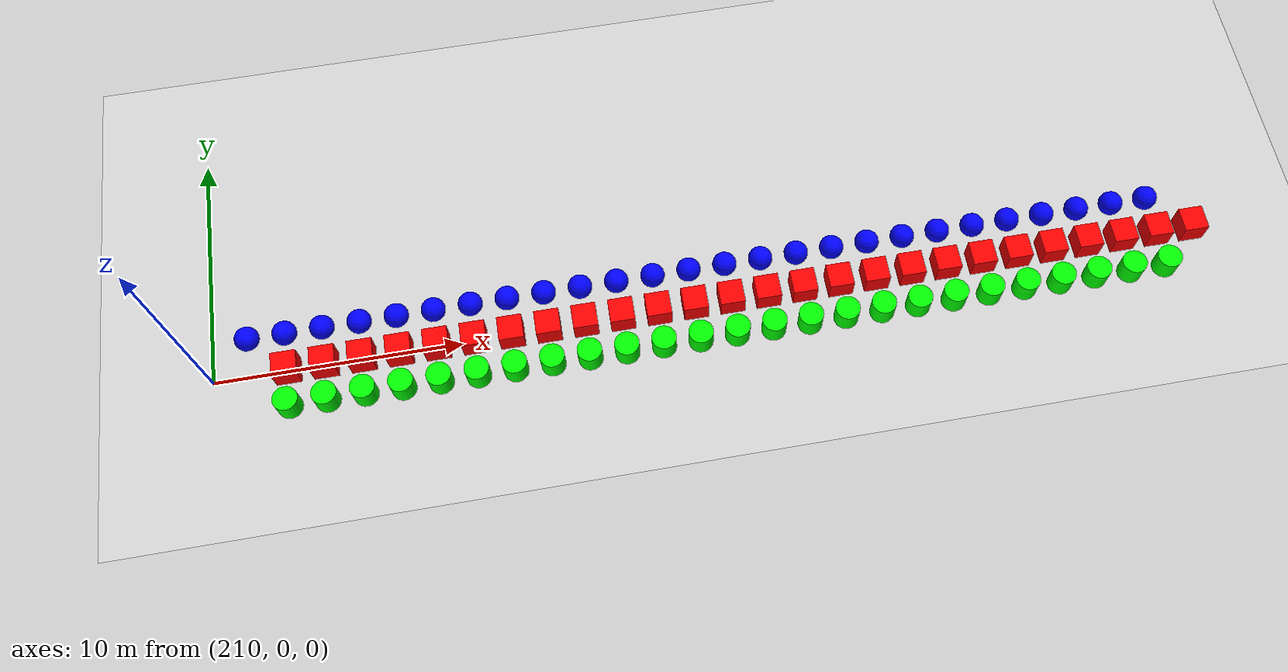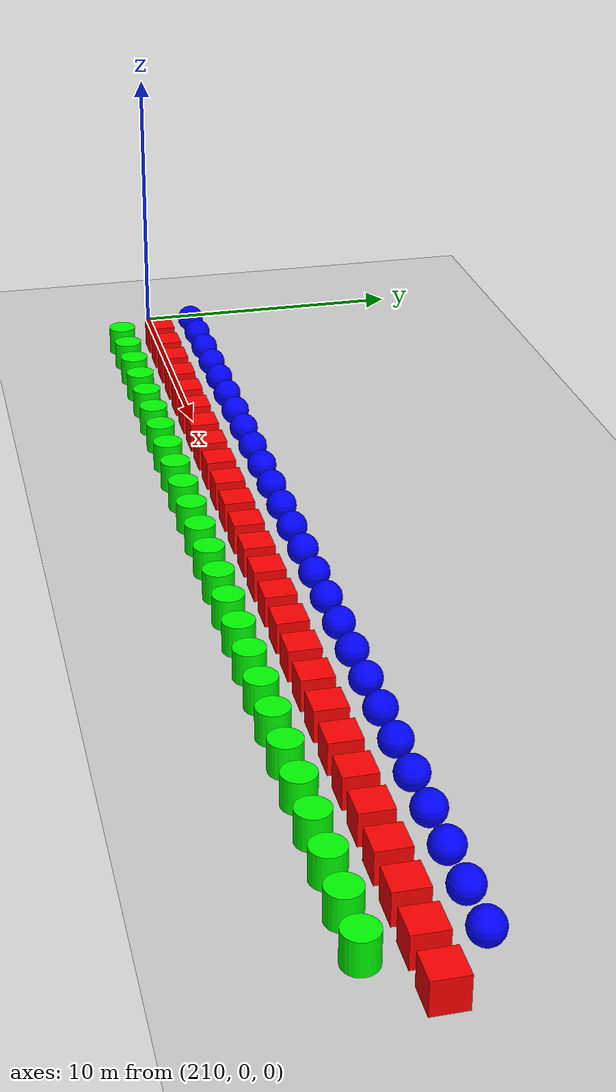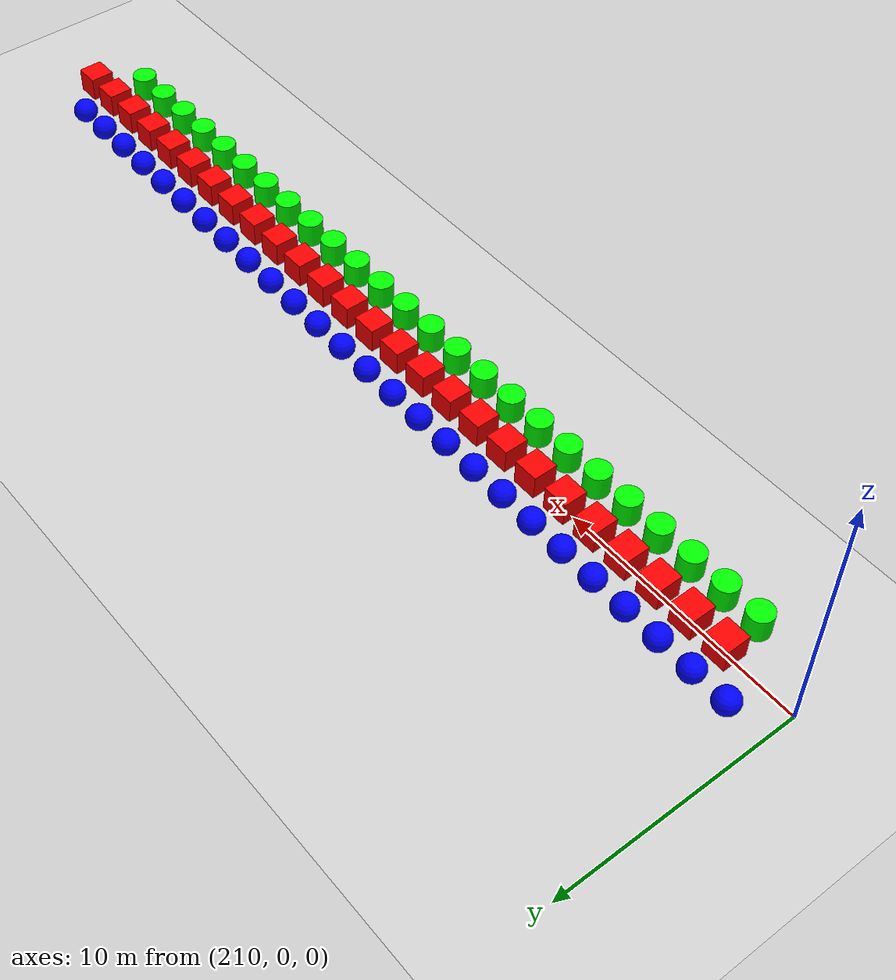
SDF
<sdf version="1.6">
 <world name="shapes">
  <model name="ground_plane">
   <static>true</static>
   <link name="link">
    <collision name="collision">
     <geometry><plane><normal>0 0 1</normal><size>100 100</size></plane></geometry>
    </collision>
    <visual name="visual">
     <geometry><plane><normal>0 0 1</normal><size>100 100</size></plane></geometry>
     <material>
      <ambient>0.8 0.8 0.8 1</ambient>
      <diffuse>0.8 0.8 0.8 1</diffuse>
      <specular>0.8 0.8 0.8 1</specular>
     </material>
    </visual>
   </link>
  </model>
  <model name="sphere_641">
   <static>false</static>
   <pose>211.5 1.5 0.5 0 0 0</pose>
   <link name="sphere_link">
    <inertial>
     <inertia><ixx>3</ixx><ixy>0</ixy><ixz>0</ixz><iyy>3</iyy><iyz>0</iyz><izz>3</izz></inertia>
     <mass>3.0</mass>
    </inertial>
    <collision name="sphere_collision"><geometry><sphere><radius>0.5</radius></sphere></geometry></collision>
    <visual name="sphere_visual">
     <geometry><sphere><radius>0.5</radius></sphere></geometry>
     <material><ambient>0 0 1 1</ambient><diffuse>0 0 1 1</diffuse><specular>0 0 1 1</specular></material>
    </visual>
   </link>
  </model>
  <model name="box_642">
   <static>false</static>
   <pose>213.0 0 0.5 0 0 0</pose>
   <link name="box_link">
    <inertial>
     <inertia><ixx>1</ixx><ixy>0</ixy><ixz>0</ixz><iyy>1</iyy><iyz>0</iyz><izz>1</izz></inertia>
     <mass>1.0</mass>
    </inertial>
    <collision name="box_collision"><geometry><box><size>1 1 1</size></box></geometry></collision>
    <visual name="box_visual">
     <geometry><box><size>1 1 1</size></box></geometry>
     <material><ambient>1 0 0 1</ambient><diffuse>1 0 0 1</diffuse><specular>1 0 0 1</specular></material>
    </visual>
   </link>
  </model>
  <model name="cylinder_642">
   <static>false</static>
   <pose>213.0 -1.5 0.5 0 0 0</pose>
   <link name="cylinder_link">
    <inertial>
     <inertia><ixx>2</ixx><ixy>0</ixy><ixz>0</ixz><iyy>2</iyy><iyz>0</iyz><izz>2</izz></inertia>
     <mass>2.0</mass>
    </inertial>
    <collision name="cylinder_collision">
     <geometry><cylinder><radius>0.5</radius><length>1.0</length></cylinder></geometry>
    </collision>
    <visual name="cylinder_visual">
     <geometry><cylinder><radius>0.5</radius><length>1.0</length></cylinder></geometry>
     <material><ambient>0 1 0 1</ambient><diffuse>0 1 0 1</diffuse><specular>0 1 0 1</specular></material>
    </visual>
   </link>
  </model>
  <model name="sphere_642">
   <static>false</static>
   <pose>213.0 1.5 0.5 0 0 0</pose>
   <link name="sphere_link">
    <inertial>
     <inertia><ixx>3</ixx><ixy>0</ixy><ixz>0</ixz><iyy>3</iyy><iyz>0</iyz><izz>3</izz></inertia>
     <mass>3.0</mass>
    </inertial>
    <collision name="sphere_collision"><geometry><sphere><radius>0.5</radius></sphere></geometry></collision>
    <visual name="sphere_visual">
     <geometry><sphere><radius>0.5</radius></sphere></geometry>
     <material><ambient>0 0 1 1</ambient><diffuse>0 0 1 1</diffuse><specular>0 0 1 1</specular></material>
    </visual>
   </link>
  </model>
  <model name="box_643">
   <static>false</static>
   <pose>214.5 0 0.5 0 0 0</pose>
   <link name="box_link">
    <inertial>
     <inertia><ixx>1</ixx><ixy>0</ixy><ixz>0</ixz><iyy>1</iyy><iyz>0</iyz><izz>1</izz></inertia>
     <mass>1.0</mass>
    </inertial>
    <collision name="box_collision"><geometry><box><size>1 1 1</size></box></geometry></collision>
    <visual name="box_visual">
     <geometry><box><size>1 1 1</size></box></geometry>
     <material><ambient>1 0 0 1</ambient><diffuse>1 0 0 1</diffuse><specular>1 0 0 1</specular></material>
    </visual>
   </link>
  </model>
  <model name="cylinder_643">
   <static>false</static>
   <pose>214.5 -1.5 0.5 0 0 0</pose>
   <link name="cylinder_link">
    <inertial>
     <inertia><ixx>2</ixx><ixy>0</ixy><ixz>0</ixz><iyy>2</iyy><iyz>0</iyz><izz>2</izz></inertia>
     <mass>2.0</mass>
    </inertial>
    <collision name="cylinder_collision">
     <geometry><cylinder><radius>0.5</radius><length>1.0</length></cylinder></geometry>
    </collision>
    <visual name="cylinder_visual">
     <geometry><cylinder><radius>0.5</radius><length>1.0</length></cylinder></geometry>
     <material><ambient>0 1 0 1</ambient><diffuse>0 1 0 1</diffuse><specular>0 1 0 1</specular></material>
    </visual>
   </link>
  </model>
  <model name="sphere_643">
   <static>false</static>
   <pose>214.5 1.5 0.5 0 0 0</pose>
   <link name="sphere_link">
    <inertial>
     <inertia><ixx>3</ixx><ixy>0</ixy><ixz>0</ixz><iyy>3</iyy><iyz>0</iyz><izz>3</izz></inertia>
     <mass>3.0</mass>
    </inertial>
    <collision name="sphere_collision"><geometry><sphere><radius>0.5</radius></sphere></geometry></collision>
    <visual name="sphere_visual">
     <geometry><sphere><radius>0.5</radius></sphere></geometry>
     <material><ambient>0 0 1 1</ambient><diffuse>0 0 1 1</diffuse><specular>0 0 1 1</specular></material>
    </visual>
   </link>
  </model>
  <model name="box_644">
   <static>false</static>
   <pose>216.0 0 0.5 0 0 0</pose>
   <link name="box_link">
    <inertial>
     <inertia><ixx>1</ixx><ixy>0</ixy><ixz>0</ixz><iyy>1</iyy><iyz>0</iyz><izz>1</izz></inertia>
     <mass>1.0</mass>
    </inertial>
    <collision name="box_collision"><geometry><box><size>1 1 1</size></box></geometry></collision>
    <visual name="box_visual">
     <geometry><box><size>1 1 1</size></box></geometry>
     <material><ambient>1 0 0 1</ambient><diffuse>1 0 0 1</diffuse><specular>1 0 0 1</specular></material>
    </visual>
   </link>
  </model>
  <model name="cylinder_644">
   <static>false</static>
   <pose>216.0 -1.5 0.5 0 0 0</pose>
   <link name="cylinder_link">
    <inertial>
     <inertia><ixx>2</ixx><ixy>0</ixy><ixz>0</ixz><iyy>2</iyy><iyz>0</iyz><izz>2</izz></inertia>
     <mass>2.0</mass>
    </inertial>
    <collision name="cylinder_collision">
     <geometry><cylinder><radius>0.5</radius><length>1.0</length></cylinder></geometry>
    </collision>
    <visual name="cylinder_visual">
     <geometry><cylinder><radius>0.5</radius><length>1.0</length></cylinder></geometry>
     <material><ambient>0 1 0 1</ambient><diffuse>0 1 0 1</diffuse><specular>0 1 0 1</specular></material>
    </visual>
   </link>
  </model>
  <model name="sphere_644">
   <static>false</static>
   <pose>216.0 1.5 0.5 0 0 0</pose>
   <link name="sphere_link">
    <inertial>
     <inertia><ixx>3</ixx><ixy>0</ixy><ixz>0</ixz><iyy>3</iyy><iyz>0</iyz><izz>3</izz></inertia>
     <mass>3.0</mass>
    </inertial>
    <collision name="sphere_collision"><geometry><sphere><radius>0.5</radius></sphere></geometry></collision>
    <visual name="sphere_visual">
     <geometry><sphere><radius>0.5</radius></sphere></geometry>
     <material><ambient>0 0 1 1</ambient><diffuse>0 0 1 1</diffuse><specular>0 0 1 1</specular></material>
    </visual>
   </link>
  </model>
  <model name="box_645">
   <static>false</static>
   <pose>217.5 0 0.5 0 0 0</pose>
   <link name="box_link">
    <inertial>
     <inertia><ixx>1</ixx><ixy>0</ixy><ixz>0</ixz><iyy>1</iyy><iyz>0</iyz><izz>1</izz></inertia>
     <mass>1.0</mass>
    </inertial>
    <collision name="box_collision"><geometry><box><size>1 1 1</size></box></geometry></collision>
    <visual name="box_visual">
     <geometry><box><size>1 1 1</size></box></geometry>
     <material><ambient>1 0 0 1</ambient><diffuse>1 0 0 1</diffuse><specular>1 0 0 1</specular></material>
    </visual>
   </link>
  </model>
  <model name="cylinder_645">
   <static>false</static>
   <pose>217.5 -1.5 0.5 0 0 0</pose>
   <link name="cylinder_link">
    <inertial>
     <inertia><ixx>2</ixx><ixy>0</ixy><ixz>0</ixz><iyy>2</iyy><iyz>0</iyz><izz>2</izz></inertia>
     <mass>2.0</mass>
    </inertial>
    <collision name="cylinder_collision">
     <geometry><cylinder><radius>0.5</radius><length>1.0</length></cylinder></geometry>
    </collision>
    <visual name="cylinder_visual">
     <geometry><cylinder><radius>0.5</radius><length>1.0</length></cylinder></geometry>
     <material><ambient>0 1 0 1</ambient><diffuse>0 1 0 1</diffuse><specular>0 1 0 1</specular></material>
    </visual>
   </link>
  </model>
  <model name="sphere_645">
   <static>false</static>
   <pose>217.5 1.5 0.5 0 0 0</pose>
   <link name="sphere_link">
    <inertial>
     <inertia><ixx>3</ixx><ixy>0</ixy><ixz>0</ixz><iyy>3</iyy><iyz>0</iyz><izz>3</izz></inertia>
     <mass>3.0</mass>
    </inertial>
    <collision name="sphere_collision"><geometry><sphere><radius>0.5</radius></sphere></geometry></collision>
    <visual name="sphere_visual">
     <geometry><sphere><radius>0.5</radius></sphere></geometry>
     <material><ambient>0 0 1 1</ambient><diffuse>0 0 1 1</diffuse><specular>0 0 1 1</specular></material>
    </visual>
   </link>
  </model>
  <model name="box_646">
   <static>false</static>
   <pose>219.0 0 0.5 0 0 0</pose>
   <link name="box_link">
    <inertial>
     <inertia><ixx>1</ixx><ixy>0</ixy><ixz>0</ixz><iyy>1</iyy><iyz>0</iyz><izz>1</izz></inertia>
     <mass>1.0</mass>
    </inertial>
    <collision name="box_collision"><geometry><box><size>1 1 1</size></box></geometry></collision>
    <visual name="box_visual">
     <geometry><box><size>1 1 1</size></box></geometry>
     <material><ambient>1 0 0 1</ambient><diffuse>1 0 0 1</diffuse><specular>1 0 0 1</specular></material>
    </visual>
   </link>
  </model>
  <model name="cylinder_646">
   <static>false</static>
   <pose>219.0 -1.5 0.5 0 0 0</pose>
   <link name="cylinder_link">
    <inertial>
     <inertia><ixx>2</ixx><ixy>0</ixy><ixz>0</ixz><iyy>2</iyy><iyz>0</iyz><izz>2</izz></inertia>
     <mass>2.0</mass>
    </inertial>
    <collision name="cylinder_collision">
     <geometry><cylinder><radius>0.5</radius><length>1.0</length></cylinder></geometry>
    </collision>
    <visual name="cylinder_visual">
     <geometry><cylinder><radius>0.5</radius><length>1.0</length></cylinder></geometry>
     <material><ambient>0 1 0 1</ambient><diffuse>0 1 0 1</diffuse><specular>0 1 0 1</specular></material>
    </visual>
   </link>
  </model>
  <model name="sphere_646">
   <static>false</static>
   <pose>219.0 1.5 0.5 0 0 0</pose>
   <link name="sphere_link">
    <inertial>
     <inertia><ixx>3</ixx><ixy>0</ixy><ixz>0</ixz><iyy>3</iyy><iyz>0</iyz><izz>3</izz></inertia>
     <mass>3.0</mass>
    </inertial>
    <collision name="sphere_collision"><geometry><sphere><radius>0.5</radius></sphere></geometry></collision>
    <visual name="sphere_visual">
     <geometry><sphere><radius>0.5</radius></sphere></geometry>
     <material><ambient>0 0 1 1</ambient><diffuse>0 0 1 1</diffuse><specular>0 0 1 1</specular></material>
    </visual>
   </link>
  </model>
  <model name="box_647">
   <static>false</static>
   <pose>220.5 0 0.5 0 0 0</pose>
   <link name="box_link">
    <inertial>
     <inertia><ixx>1</ixx><ixy>0</ixy><ixz>0</ixz><iyy>1</iyy><iyz>0</iyz><izz>1</izz></inertia>
     <mass>1.0</mass>
    </inertial>
    <collision name="box_collision"><geometry><box><size>1 1 1</size></box></geometry></collision>
    <visual name="box_visual">
     <geometry><box><size>1 1 1</size></box></geometry>
     <material><ambient>1 0 0 1</ambient><diffuse>1 0 0 1</diffuse><specular>1 0 0 1</specular></material>
    </visual>
   </link>
  </model>
  <model name="cylinder_647">
   <static>false</static>
   <pose>220.5 -1.5 0.5 0 0 0</pose>
   <link name="cylinder_link">
    <inertial>
     <inertia><ixx>2</ixx><ixy>0</ixy><ixz>0</ixz><iyy>2</iyy><iyz>0</iyz><izz>2</izz></inertia>
     <mass>2.0</mass>
    </inertial>
    <collision name="cylinder_collision">
     <geometry><cylinder><radius>0.5</radius><length>1.0</length></cylinder></geometry>
    </collision>
    <visual name="cylinder_visual">
     <geometry><cylinder><radius>0.5</radius><length>1.0</length></cylinder></geometry>
     <material><ambient>0 1 0 1</ambient><diffuse>0 1 0 1</diffuse><specular>0 1 0 1</specular></material>
    </visual>
   </link>
  </model>
  <model name="sphere_647">
   <static>false</static>
   <pose>220.5 1.5 0.5 0 0 0</pose>
   <link name="sphere_link">
    <inertial>
     <inertia><ixx>3</ixx><ixy>0</ixy><ixz>0</ixz><iyy>3</iyy><iyz>0</iyz><izz>3</izz></inertia>
     <mass>3.0</mass>
    </inertial>
    <collision name="sphere_collision"><geometry><sphere><radius>0.5</radius></sphere></geometry></collision>
    <visual name="sphere_visual">
     <geometry><sphere><radius>0.5</radius></sphere></geometry>
     <material><ambient>0 0 1 1</ambient><diffuse>0 0 1 1</diffuse><specular>0 0 1 1</specular></material>
    </visual>
   </link>
  </model>
  <model name="box_648">
   <static>false</static>
   <pose>222.0 0 0.5 0 0 0</pose>
   <link name="box_link">
    <inertial>
     <inertia><ixx>1</ixx><ixy>0</ixy><ixz>0</ixz><iyy>1</iyy><iyz>0</iyz><izz>1</izz></inertia>
     <mass>1.0</mass>
    </inertial>
    <collision name="box_collision"><geometry><box><size>1 1 1</size></box></geometry></collision>
    <visual name="box_visual">
     <geometry><box><size>1 1 1</size></box></geometry>
     <material><ambient>1 0 0 1</ambient><diffuse>1 0 0 1</diffuse><specular>1 0 0 1</specular></material>
    </visual>
   </link>
  </model>
  <model name="cylinder_648">
   <static>false</static>
   <pose>222.0 -1.5 0.5 0 0 0</pose>
   <link name="cylinder_link">
    <inertial>
     <inertia><ixx>2</ixx><ixy>0</ixy><ixz>0</ixz><iyy>2</iyy><iyz>0</iyz><izz>2</izz></inertia>
     <mass>2.0</mass>
    </inertial>
    <collision name="cylinder_collision">
     <geometry><cylinder><radius>0.5</radius><length>1.0</length></cylinder></geometry>
    </collision>
    <visual name="cylinder_visual">
     <geometry><cylinder><radius>0.5</radius><length>1.0</length></cylinder></geometry>
     <material><ambient>0 1 0 1</ambient><diffuse>0 1 0 1</diffuse><specular>0 1 0 1</specular></material>
    </visual>
   </link>
  </model>
  <model name="sphere_648">
   <static>false</static>
   <pose>222.0 1.5 0.5 0 0 0</pose>
   <link name="sphere_link">
    <inertial>
     <inertia><ixx>3</ixx><ixy>0</ixy><ixz>0</ixz><iyy>3</iyy><iyz>0</iyz><izz>3</izz></inertia>
     <mass>3.0</mass>
    </inertial>
    <collision name="sphere_collision"><geometry><sphere><radius>0.5</radius></sphere></geometry></collision>
    <visual name="sphere_visual">
     <geometry><sphere><radius>0.5</radius></sphere></geometry>
     <material><ambient>0 0 1 1</ambient><diffuse>0 0 1 1</diffuse><specular>0 0 1 1</specular></material>
    </visual>
   </link>
  </model>
  <model name="box_649">
   <static>false</static>
   <pose>223.5 0 0.5 0 0 0</pose>
   <link name="box_link">
    <inertial>
     <inertia><ixx>1</ixx><ixy>0</ixy><ixz>0</ixz><iyy>1</iyy><iyz>0</iyz><izz>1</izz></inertia>
     <mass>1.0</mass>
    </inertial>
    <collision name="box_collision"><geometry><box><size>1 1 1</size></box></geometry></collision>
    <visual name="box_visual">
     <geometry><box><size>1 1 1</size></box></geometry>
     <material><ambient>1 0 0 1</ambient><diffuse>1 0 0 1</diffuse><specular>1 0 0 1</specular></material>
    </visual>
   </link>
  </model>
  <model name="cylinder_649">
   <static>false</static>
   <pose>223.5 -1.5 0.5 0 0 0</pose>
   <link name="cylinder_link">
    <inertial>
     <inertia><ixx>2</ixx><ixy>0</ixy><ixz>0</ixz><iyy>2</iyy><iyz>0</iyz><izz>2</izz></inertia>
     <mass>2.0</mass>
    </inertial>
    <collision name="cylinder_collision">
     <geometry><cylinder><radius>0.5</radius><length>1.0</length></cylinder></geometry>
    </collision>
    <visual name="cylinder_visual">
     <geometry><cylinder><radius>0.5</radius><length>1.0</length></cylinder></geometry>
     <material><ambient>0 1 0 1</ambient><diffuse>0 1 0 1</diffuse><specular>0 1 0 1</specular></material>
    </visual>
   </link>
  </model>
  <model name="sphere_649">
   <static>false</static>
   <pose>223.5 1.5 0.5 0 0 0</pose>
   <link name="sphere_link">
    <inertial>
     <inertia><ixx>3</ixx><ixy>0</ixy><ixz>0</ixz><iyy>3</iyy><iyz>0</iyz><izz>3</izz></inertia>
     <mass>3.0</mass>
    </inertial>
    <collision name="sphere_collision"><geometry><sphere><radius>0.5</radius></sphere></geometry></collision>
    <visual name="sphere_visual">
     <geometry><sphere><radius>0.5</radius></sphere></geometry>
     <material><ambient>0 0 1 1</ambient><diffuse>0 0 1 1</diffuse><specular>0 0 1 1</specular></material>
    </visual>
   </link>
  </model>
  <model name="box_650">
   <static>false</static>
   <pose>225.0 0 0.5 0 0 0</pose>
   <link name="box_link">
    <inertial>
     <inertia><ixx>1</ixx><ixy>0</ixy><ixz>0</ixz><iyy>1</iyy><iyz>0</iyz><izz>1</izz></inertia>
     <mass>1.0</mass>
    </inertial>
    <collision name="box_collision"><geometry><box><size>1 1 1</size></box></geometry></collision>
    <visual name="box_visual">
     <geometry><box><size>1 1 1</size></box></geometry>
     <material><ambient>1 0 0 1</ambient><diffuse>1 0 0 1</diffuse><specular>1 0 0 1</specular></material>
    </visual>
   </link>
  </model>
  <model name="cylinder_650">
   <static>false</static>
   <pose>225.0 -1.5 0.5 0 0 0</pose>
   <link name="cylinder_link">
    <inertial>
     <inertia><ixx>2</ixx><ixy>0</ixy><ixz>0</ixz><iyy>2</iyy><iyz>0</iyz><izz>2</izz></inertia>
     <mass>2.0</mass>
    </inertial>
    <collision name="cylinder_collision">
     <geometry><cylinder><radius>0.5</radius><length>1.0</length></cylinder></geometry>
    </collision>
    <visual name="cylinder_visual">
     <geometry><cylinder><radius>0.5</radius><length>1.0</length></cylinder></geometry>
     <material><ambient>0 1 0 1</ambient><diffuse>0 1 0 1</diffuse><specular>0 1 0 1</specular></material>
    </visual>
   </link>
  </model>
  <model name="sphere_650">
   <static>false</static>
   <pose>225.0 1.5 0.5 0 0 0</pose>
   <link name="sphere_link">
    <inertial>
     <inertia><ixx>3</ixx><ixy>0</ixy><ixz>0</ixz><iyy>3</iyy><iyz>0</iyz><izz>3</izz></inertia>
     <mass>3.0</mass>
    </inertial>
    <collision name="sphere_collision"><geometry><sphere><radius>0.5</radius></sphere></geometry></collision>
    <visual name="sphere_visual">
     <geometry><sphere><radius>0.5</radius></sphere></geometry>
     <material><ambient>0 0 1 1</ambient><diffuse>0 0 1 1</diffuse><specular>0 0 1 1</specular></material>
    </visual>
   </link>
  </model>
  <model name="box_651">
   <static>false</static>
   <pose>226.5 0 0.5 0 0 0</pose>
   <link name="box_link">
    <inertial>
     <inertia><ixx>1</ixx><ixy>0</ixy><ixz>0</ixz><iyy>1</iyy><iyz>0</iyz><izz>1</izz></inertia>
     <mass>1.0</mass>
    </inertial>
    <collision name="box_collision"><geometry><box><size>1 1 1</size></box></geometry></collision>
    <visual name="box_visual">
     <geometry><box><size>1 1 1</size></box></geometry>
     <material><ambient>1 0 0 1</ambient><diffuse>1 0 0 1</diffuse><specular>1 0 0 1</specular></material>
    </visual>
   </link>
  </model>
  <model name="cylinder_651">
   <static>false</static>
   <pose>226.5 -1.5 0.5 0 0 0</pose>
   <link name="cylinder_link">
    <inertial>
     <inertia><ixx>2</ixx><ixy>0</ixy><ixz>0</ixz><iyy>2</iyy><iyz>0</iyz><izz>2</izz></inertia>
     <mass>2.0</mass>
    </inertial>
    <collision name="cylinder_collision">
     <geometry><cylinder><radius>0.5</radius><length>1.0</length></cylinder></geometry>
    </collision>
    <visual name="cylinder_visual">
     <geometry><cylinder><radius>0.5</radius><length>1.0</length></cylinder></geometry>
     <material><ambient>0 1 0 1</ambient><diffuse>0 1 0 1</diffuse><specular>0 1 0 1</specular></material>
    </visual>
   </link>
  </model>
  <model name="sphere_651">
   <static>false</static>
   <pose>226.5 1.5 0.5 0 0 0</pose>
   <link name="sphere_link">
    <inertial>
     <inertia><ixx>3</ixx><ixy>0</ixy><ixz>0</ixz><iyy>3</iyy><iyz>0</iyz><izz>3</izz></inertia>
     <mass>3.0</mass>
    </inertial>
    <collision name="sphere_collision"><geometry><sphere><radius>0.5</radius></sphere></geometry></collision>
    <visual name="sphere_visual">
     <geometry><sphere><radius>0.5</radius></sphere></geometry>
     <material><ambient>0 0 1 1</ambient><diffuse>0 0 1 1</diffuse><specular>0 0 1 1</specular></material>
    </visual>
   </link>
  </model>
  <model name="box_652">
   <static>false</static>
   <pose>228.0 0 0.5 0 0 0</pose>
   <link name="box_link">
    <inertial>
     <inertia><ixx>1</ixx><ixy>0</ixy><ixz>0</ixz><iyy>1</iyy><iyz>0</iyz><izz>1</izz></inertia>
     <mass>1.0</mass>
    </inertial>
    <collision name="box_collision"><geometry><box><size>1 1 1</size></box></geometry></collision>
    <visual name="box_visual">
     <geometry><box><size>1 1 1</size></box></geometry>
     <material><ambient>1 0 0 1</ambient><diffuse>1 0 0 1</diffuse><specular>1 0 0 1</specular></material>
    </visual>
   </link>
  </model>
  <model name="cylinder_652">
   <static>false</static>
   <pose>228.0 -1.5 0.5 0 0 0</pose>
   <link name="cylinder_link">
    <inertial>
     <inertia><ixx>2</ixx><ixy>0</ixy><ixz>0</ixz><iyy>2</iyy><iyz>0</iyz><izz>2</izz></inertia>
     <mass>2.0</mass>
    </inertial>
    <collision name="cylinder_collision">
     <geometry><cylinder><radius>0.5</radius><length>1.0</length></cylinder></geometry>
    </collision>
    <visual name="cylinder_visual">
     <geometry><cylinder><radius>0.5</radius><length>1.0</length></cylinder></geometry>
     <material><ambient>0 1 0 1</ambient><diffuse>0 1 0 1</diffuse><specular>0 1 0 1</specular></material>
    </visual>
   </link>
  </model>
  <model name="sphere_652">
   <static>false</static>
   <pose>228.0 1.5 0.5 0 0 0</pose>
   <link name="sphere_link">
    <inertial>
     <inertia><ixx>3</ixx><ixy>0</ixy><ixz>0</ixz><iyy>3</iyy><iyz>0</iyz><izz>3</izz></inertia>
     <mass>3.0</mass>
    </inertial>
    <collision name="sphere_collision"><geometry><sphere><radius>0.5</radius></sphere></geometry></collision>
    <visual name="sphere_visual">
     <geometry><sphere><radius>0.5</radius></sphere></geometry>
     <material><ambient>0 0 1 1</ambient><diffuse>0 0 1 1</diffuse><specular>0 0 1 1</specular></material>
    </visual>
   </link>
  </model>
  <model name="box_653">
   <static>false</static>
   <pose>229.5 0 0.5 0 0 0</pose>
   <link name="box_link">
    <inertial>
     <inertia><ixx>1</ixx><ixy>0</ixy><ixz>0</ixz><iyy>1</iyy><iyz>0</iyz><izz>1</izz></inertia>
     <mass>1.0</mass>
    </inertial>
    <collision name="box_collision"><geometry><box><size>1 1 1</size></box></geometry></collision>
    <visual name="box_visual">
     <geometry><box><size>1 1 1</size></box></geometry>
     <material><ambient>1 0 0 1</ambient><diffuse>1 0 0 1</diffuse><specular>1 0 0 1</specular></material>
    </visual>
   </link>
  </model>
  <model name="cylinder_653">
   <static>false</static>
   <pose>229.5 -1.5 0.5 0 0 0</pose>
   <link name="cylinder_link">
    <inertial>
     <inertia><ixx>2</ixx><ixy>0</ixy><ixz>0</ixz><iyy>2</iyy><iyz>0</iyz><izz>2</izz></inertia>
     <mass>2.0</mass>
    </inertial>
    <collision name="cylinder_collision">
     <geometry><cylinder><radius>0.5</radius><length>1.0</length></cylinder></geometry>
    </collision>
    <visual name="cylinder_visual">
     <geometry><cylinder><radius>0.5</radius><length>1.0</length></cylinder></geometry>
     <material><ambient>0 1 0 1</ambient><diffuse>0 1 0 1</diffuse><specular>0 1 0 1</specular></material>
    </visual>
   </link>
  </model>
  <model name="sphere_653">
   <static>false</static>
   <pose>229.5 1.5 0.5 0 0 0</pose>
   <link name="sphere_link">
    <inertial>
     <inertia><ixx>3</ixx><ixy>0</ixy><ixz>0</ixz><iyy>3</iyy><iyz>0</iyz><izz>3</izz></inertia>
     <mass>3.0</mass>
    </inertial>
    <collision name="sphere_collision"><geometry><sphere><radius>0.5</radius></sphere></geometry></collision>
    <visual name="sphere_visual">
     <geometry><sphere><radius>0.5</radius></sphere></geometry>
     <material><ambient>0 0 1 1</ambient><diffuse>0 0 1 1</diffuse><specular>0 0 1 1</specular></material>
    </visual>
   </link>
  </model>
  <model name="box_654">
   <static>false</static>
   <pose>231.0 0 0.5 0 0 0</pose>
   <link name="box_link">
    <inertial>
     <inertia><ixx>1</ixx><ixy>0</ixy><ixz>0</ixz><iyy>1</iyy><iyz>0</iyz><izz>1</izz></inertia>
     <mass>1.0</mass>
    </inertial>
    <collision name="box_collision"><geometry><box><size>1 1 1</size></box></geometry></collision>
    <visual name="box_visual">
     <geometry><box><size>1 1 1</size></box></geometry>
     <material><ambient>1 0 0 1</ambient><diffuse>1 0 0 1</diffuse><specular>1 0 0 1</specular></material>
    </visual>
   </link>
  </model>
  <model name="cylinder_654">
   <static>false</static>
   <pose>231.0 -1.5 0.5 0 0 0</pose>
   <link name="cylinder_link">
    <inertial>
     <inertia><ixx>2</ixx><ixy>0</ixy><ixz>0</ixz><iyy>2</iyy><iyz>0</iyz><izz>2</izz></inertia>
     <mass>2.0</mass>
    </inertial>
    <collision name="cylinder_collision">
     <geometry><cylinder><radius>0.5</radius><length>1.0</length></cylinder></geometry>
    </collision>
    <visual name="cylinder_visual">
     <geometry><cylinder><radius>0.5</radius><length>1.0</length></cylinder></geometry>
     <material><ambient>0 1 0 1</ambient><diffuse>0 1 0 1</diffuse><specular>0 1 0 1</specular></material>
    </visual>
   </link>
  </model>
  <model name="sphere_654">
   <static>false</static>
   <pose>231.0 1.5 0.5 0 0 0</pose>
   <link name="sphere_link">
    <inertial>
     <inertia><ixx>3</ixx><ixy>0</ixy><ixz>0</ixz><iyy>3</iyy><iyz>0</iyz><izz>3</izz></inertia>
     <mass>3.0</mass>
    </inertial>
    <collision name="sphere_collision"><geometry><sphere><radius>0.5</radius></sphere></geometry></collision>
    <visual name="sphere_visual">
     <geometry><sphere><radius>0.5</radius></sphere></geometry>
     <material><ambient>0 0 1 1</ambient><diffuse>0 0 1 1</diffuse><specular>0 0 1 1</specular></material>
    </visual>
   </link>
  </model>
  <model name="box_655">
   <static>false</static>
   <pose>232.5 0 0.5 0 0 0</pose>
   <link name="box_link">
    <inertial>
     <inertia><ixx>1</ixx><ixy>0</ixy><ixz>0</ixz><iyy>1</iyy><iyz>0</iyz><izz>1</izz></inertia>
     <mass>1.0</mass>
    </inertial>
    <collision name="box_collision"><geometry><box><size>1 1 1</size></box></geometry></collision>
    <visual name="box_visual">
     <geometry><box><size>1 1 1</size></box></geometry>
     <material><ambient>1 0 0 1</ambient><diffuse>1 0 0 1</diffuse><specular>1 0 0 1</specular></material>
    </visual>
   </link>
  </model>
  <model name="cylinder_655">
   <static>false</static>
   <pose>232.5 -1.5 0.5 0 0 0</pose>
   <link name="cylinder_link">
    <inertial>
     <inertia><ixx>2</ixx><ixy>0</ixy><ixz>0</ixz><iyy>2</iyy><iyz>0</iyz><izz>2</izz></inertia>
     <mass>2.0</mass>
    </inertial>
    <collision name="cylinder_collision">
     <geometry><cylinder><radius>0.5</radius><length>1.0</length></cylinder></geometry>
    </collision>
    <visual name="cylinder_visual">
     <geometry><cylinder><radius>0.5</radius><length>1.0</length></cylinder></geometry>
     <material><ambient>0 1 0 1</ambient><diffuse>0 1 0 1</diffuse><specular>0 1 0 1</specular></material>
    </visual>
   </link>
  </model>
  <model name="sphere_655">
   <static>false</static>
   <pose>232.5 1.5 0.5 0 0 0</pose>
   <link name="sphere_link">
    <inertial>
     <inertia><ixx>3</ixx><ixy>0</ixy><ixz>0</ixz><iyy>3</iyy><iyz>0</iyz><izz>3</izz></inertia>
     <mass>3.0</mass>
    </inertial>
    <collision name="sphere_collision"><geometry><sphere><radius>0.5</radius></sphere></geometry></collision>
    <visual name="sphere_visual">
     <geometry><sphere><radius>0.5</radius></sphere></geometry>
     <material><ambient>0 0 1 1</ambient><diffuse>0 0 1 1</diffuse><specular>0 0 1 1</specular></material>
    </visual>
   </link>
  </model>
  <model name="box_656">
   <static>false</static>
   <pose>234.0 0 0.5 0 0 0</pose>
   <link name="box_link">
    <inertial>
     <inertia><ixx>1</ixx><ixy>0</ixy><ixz>0</ixz><iyy>1</iyy><iyz>0</iyz><izz>1</izz></inertia>
     <mass>1.0</mass>
    </inertial>
    <collision name="box_collision"><geometry><box><size>1 1 1</size></box></geometry></collision>
    <visual name="box_visual">
     <geometry><box><size>1 1 1</size></box></geometry>
     <material><ambient>1 0 0 1</ambient><diffuse>1 0 0 1</diffuse><specular>1 0 0 1</specular></material>
    </visual>
   </link>
  </model>
  <model name="cylinder_656">
   <static>false</static>
   <pose>234.0 -1.5 0.5 0 0 0</pose>
   <link name="cylinder_link">
    <inertial>
     <inertia><ixx>2</ixx><ixy>0</ixy><ixz>0</ixz><iyy>2</iyy><iyz>0</iyz><izz>2</izz></inertia>
     <mass>2.0</mass>
    </inertial>
    <collision name="cylinder_collision">
     <geometry><cylinder><radius>0.5</radius><length>1.0</length></cylinder></geometry>
    </collision>
    <visual name="cylinder_visual">
     <geometry><cylinder><radius>0.5</radius><length>1.0</length></cylinder></geometry>
     <material><ambient>0 1 0 1</ambient><diffuse>0 1 0 1</diffuse><specular>0 1 0 1</specular></material>
    </visual>
   </link>
  </model>
  <model name="sphere_656">
   <static>false</static>
   <pose>234.0 1.5 0.5 0 0 0</pose>
   <link name="sphere_link">
    <inertial>
     <inertia><ixx>3</ixx><ixy>0</ixy><ixz>0</ixz><iyy>3</iyy><iyz>0</iyz><izz>3</izz></inertia>
     <mass>3.0</mass>
    </inertial>
    <collision name="sphere_collision"><geometry><sphere><radius>0.5</radius></sphere></geometry></collision>
    <visual name="sphere_visual">
     <geometry><sphere><radius>0.5</radius></sphere></geometry>
     <material><ambient>0 0 1 1</ambient><diffuse>0 0 1 1</diffuse><specular>0 0 1 1</specular></material>
    </visual>
   </link>
  </model>
  <model name="box_657">
   <static>false</static>
   <pose>235.5 0 0.5 0 0 0</pose>
   <link name="box_link">
    <inertial>
     <inertia><ixx>1</ixx><ixy>0</ixy><ixz>0</ixz><iyy>1</iyy><iyz>0</iyz><izz>1</izz></inertia>
     <mass>1.0</mass>
    </inertial>
    <collision name="box_collision"><geometry><box><size>1 1 1</size></box></geometry></collision>
    <visual name="box_visual">
     <geometry><box><size>1 1 1</size></box></geometry>
     <material><ambient>1 0 0 1</ambient><diffuse>1 0 0 1</diffuse><specular>1 0 0 1</specular></material>
    </visual>
   </link>
  </model>
  <model name="cylinder_657">
   <static>false</static>
   <pose>235.5 -1.5 0.5 0 0 0</pose>
   <link name="cylinder_link">
    <inertial>
     <inertia><ixx>2</ixx><ixy>0</ixy><ixz>0</ixz><iyy>2</iyy><iyz>0</iyz><izz>2</izz></inertia>
     <mass>2.0</mass>
    </inertial>
    <collision name="cylinder_collision">
     <geometry><cylinder><radius>0.5</radius><length>1.0</length></cylinder></geometry>
    </collision>
    <visual name="cylinder_visual">
     <geometry><cylinder><radius>0.5</radius><length>1.0</length></cylinder></geometry>
     <material><ambient>0 1 0 1</ambient><diffuse>0 1 0 1</diffuse><specular>0 1 0 1</specular></material>
    </visual>
   </link>
  </model>
  <model name="sphere_657">
   <static>false</static>
   <pose>235.5 1.5 0.5 0 0 0</pose>
   <link name="sphere_link">
    <inertial>
     <inertia><ixx>3</ixx><ixy>0</ixy><ixz>0</ixz><iyy>3</iyy><iyz>0</iyz><izz>3</izz></inertia>
     <mass>3.0</mass>
    </inertial>
    <collision name="sphere_collision"><geometry><sphere><radius>0.5</radius></sphere></geometry></collision>
    <visual name="sphere_visual">
     <geometry><sphere><radius>0.5</radius></sphere></geometry>
     <material><ambient>0 0 1 1</ambient><diffuse>0 0 1 1</diffuse><specular>0 0 1 1</specular></material>
    </visual>
   </link>
  </model>
  <model name="box_658">
   <static>false</static>
   <pose>237.0 0 0.5 0 0 0</pose>
   <link name="box_link">
    <inertial>
     <inertia><ixx>1</ixx><ixy>0</ixy><ixz>0</ixz><iyy>1</iyy><iyz>0</iyz><izz>1</izz></inertia>
     <mass>1.0</mass>
    </inertial>
    <collision name="box_collision"><geometry><box><size>1 1 1</size></box></geometry></collision>
    <visual name="box_visual">
     <geometry><box><size>1 1 1</size></box></geometry>
     <material><ambient>1 0 0 1</ambient><diffuse>1 0 0 1</diffuse><specular>1 0 0 1</specular></material>
    </visual>
   </link>
  </model>
  <model name="cylinder_658">
   <static>false</static>
   <pose>237.0 -1.5 0.5 0 0 0</pose>
   <link name="cylinder_link">
    <inertial>
     <inertia><ixx>2</ixx><ixy>0</ixy><ixz>0</ixz><iyy>2</iyy><iyz>0</iyz><izz>2</izz></inertia>
     <mass>2.0</mass>
    </inertial>
    <collision name="cylinder_collision">
     <geometry><cylinder><radius>0.5</radius><length>1.0</length></cylinder></geometry>
    </collision>
    <visual name="cylinder_visual">
     <geometry><cylinder><radius>0.5</radius><length>1.0</length></cylinder></geometry>
     <material><ambient>0 1 0 1</ambient><diffuse>0 1 0 1</diffuse><specular>0 1 0 1</specular></material>
    </visual>
   </link>
  </model>
  <model name="sphere_658">
   <static>false</static>
   <pose>237.0 1.5 0.5 0 0 0</pose>
   <link name="sphere_link">
    <inertial>
     <inertia><ixx>3</ixx><ixy>0</ixy><ixz>0</ixz><iyy>3</iyy><iyz>0</iyz><izz>3</izz></inertia>
     <mass>3.0</mass>
    </inertial>
    <collision name="sphere_collision"><geometry><sphere><radius>0.5</radius></sphere></geometry></collision>
    <visual name="sphere_visual">
     <geometry><sphere><radius>0.5</radius></sphere></geometry>
     <material><ambient>0 0 1 1</ambient><diffuse>0 0 1 1</diffuse><specular>0 0 1 1</specular></material>
    </visual>
   </link>
  </model>
  <model name="box_659">
   <static>false</static>
   <pose>238.5 0 0.5 0 0 0</pose>
   <link name="box_link">
    <inertial>
     <inertia><ixx>1</ixx><ixy>0</ixy><ixz>0</ixz><iyy>1</iyy><iyz>0</iyz><izz>1</izz></inertia>
     <mass>1.0</mass>
    </inertial>
    <collision name="box_collision"><geometry><box><size>1 1 1</size></box></geometry></collision>
    <visual name="box_visual">
     <geometry><box><size>1 1 1</size></box></geometry>
     <material><ambient>1 0 0 1</ambient><diffuse>1 0 0 1</diffuse><specular>1 0 0 1</specular></material>
    </visual>
   </link>
  </model>
  <model name="cylinder_659">
   <static>false</static>
   <pose>238.5 -1.5 0.5 0 0 0</pose>
   <link name="cylinder_link">
    <inertial>
     <inertia><ixx>2</ixx><ixy>0</ixy><ixz>0</ixz><iyy>2</iyy><iyz>0</iyz><izz>2</izz></inertia>
     <mass>2.0</mass>
    </inertial>
    <collision name="cylinder_collision">
     <geometry><cylinder><radius>0.5</radius><length>1.0</length></cylinder></geometry>
    </collision>
    <visual name="cylinder_visual">
     <geometry><cylinder><radius>0.5</radius><length>1.0</length></cylinder></geometry>
     <material><ambient>0 1 0 1</ambient><diffuse>0 1 0 1</diffuse><specular>0 1 0 1</specular></material>
    </visual>
   </link>
  </model>
  <model name="sphere_659">
   <static>false</static>
   <pose>238.5 1.5 0.5 0 0 0</pose>
   <link name="sphere_link">
    <inertial>
     <inertia><ixx>3</ixx><ixy>0</ixy><ixz>0</ixz><iyy>3</iyy><iyz>0</iyz><izz>3</izz></inertia>
     <mass>3.0</mass>
    </inertial>
    <collision name="sphere_collision"><geometry><sphere><radius>0.5</radius></sphere></geometry></collision>
    <visual name="sphere_visual">
     <geometry><sphere><radius>0.5</radius></sphere></geometry>
     <material><ambient>0 0 1 1</ambient><diffuse>0 0 1 1</diffuse><specular>0 0 1 1</specular></material>
    </visual>
   </link>
  </model>
  <model name="box_660">
   <static>false</static>
   <pose>240.0 0 0.5 0 0 0</pose>
   <link name="box_link">
    <inertial>
     <inertia><ixx>1</ixx><ixy>0</ixy><ixz>0</ixz><iyy>1</iyy><iyz>0</iyz><izz>1</izz></inertia>
     <mass>1.0</mass>
    </inertial>
    <collision name="box_collision"><geometry><box><size>1 1 1</size></box></geometry></collision>
    <visual name="box_visual">
     <geometry><box><size>1 1 1</size></box></geometry>
     <material><ambient>1 0 0 1</ambient><diffuse>1 0 0 1</diffuse><specular>1 0 0 1</specular></material>
    </visual>
   </link>
  </model>
  <model name="cylinder_660">
   <static>false</static>
   <pose>240.0 -1.5 0.5 0 0 0</pose>
   <link name="cylinder_link">
    <inertial>
     <inertia><ixx>2</ixx><ixy>0</ixy><ixz>0</ixz><iyy>2</iyy><iyz>0</iyz><izz>2</izz></inertia>
     <mass>2.0</mass>
    </inertial>
    <collision name="cylinder_collision">
     <geometry><cylinder><radius>0.5</radius><length>1.0</length></cylinder></geometry>
    </collision>
    <visual name="cylinder_visual">
     <geometry><cylinder><radius>0.5</radius><length>1.0</length></cylinder></geometry>
     <material><ambient>0 1 0 1</ambient><diffuse>0 1 0 1</diffuse><specular>0 1 0 1</specular></material>
    </visual>
   </link>
  </model>
  <model name="sphere_660">
   <static>false</static>
   <pose>240.0 1.5 0.5 0 0 0</pose>
   <link name="sphere_link">
    <inertial>
     <inertia><ixx>3</ixx><ixy>0</ixy><ixz>0</ixz><iyy>3</iyy><iyz>0</iyz><izz>3</izz></inertia>
     <mass>3.0</mass>
    </inertial>
    <collision name="sphere_collision"><geometry><sphere><radius>0.5</radius></sphere></geometry></collision>
    <visual name="sphere_visual">
     <geometry><sphere><radius>0.5</radius></sphere></geometry>
     <material><ambient>0 0 1 1</ambient><diffuse>0 0 1 1</diffuse><specular>0 0 1 1</specular></material>
    </visual>
   </link>
  </model>
  <model name="box_661">
   <static>false</static>
   <pose>241.5 0 0.5 0 0 0</pose>
   <link name="box_link">
    <inertial>
     <inertia><ixx>1</ixx><ixy>0</ixy><ixz>0</ixz><iyy>1</iyy><iyz>0</iyz><izz>1</izz></inertia>
     <mass>1.0</mass>
    </inertial>
    <collision name="box_collision"><geometry><box><size>1 1 1</size></box></geometry></collision>
    <visual name="box_visual">
     <geometry><box><size>1 1 1</size></box></geometry>
     <material><ambient>1 0 0 1</ambient><diffuse>1 0 0 1</diffuse><specular>1 0 0 1</specular></material>
    </visual>
   </link>
  </model>
  <model name="cylinder_661">
   <static>false</static>
   <pose>241.5 -1.5 0.5 0 0 0</pose>
   <link name="cylinder_link">
    <inertial>
     <inertia><ixx>2</ixx><ixy>0</ixy><ixz>0</ixz><iyy>2</iyy><iyz>0</iyz><izz>2</izz></inertia>
     <mass>2.0</mass>
    </inertial>
    <collision name="cylinder_collision">
     <geometry><cylinder><radius>0.5</radius><length>1.0</length></cylinder></geometry>
    </collision>
    <visual name="cylinder_visual">
     <geometry><cylinder><radius>0.5</radius><length>1.0</length></cylinder></geometry>
     <material><ambient>0 1 0 1</ambient><diffuse>0 1 0 1</diffuse><specular>0 1 0 1</specular></material>
    </visual>
   </link>
  </model>
  <model name="sphere_661">
   <static>false</static>
   <pose>241.5 1.5 0.5 0 0 0</pose>
   <link name="sphere_link">
    <inertial>
     <inertia><ixx>3</ixx><ixy>0</ixy><ixz>0</ixz><iyy>3</iyy><iyz>0</iyz><izz>3</izz></inertia>
     <mass>3.0</mass>
    </inertial>
    <collision name="sphere_collision"><geometry><sphere><radius>0.5</radius></sphere></geometry></collision>
    <visual name="sphere_visual">
     <geometry><sphere><radius>0.5</radius></sphere></geometry>
     <material><ambient>0 0 1 1</ambient><diffuse>0 0 1 1</diffuse><specular>0 0 1 1</specular></material>
    </visual>
   </link>
  </model>
  <model name="box_662">
   <static>false</static>
   <pose>243.0 0 0.5 0 0 0</pose>
   <link name="box_link">
    <inertial>
     <inertia><ixx>1</ixx><ixy>0</ixy><ixz>0</ixz><iyy>1</iyy><iyz>0</iyz><izz>1</izz></inertia>
     <mass>1.0</mass>
    </inertial>
    <collision name="box_collision"><geometry><box><size>1 1 1</size></box></geometry></collision>
    <visual name="box_visual">
     <geometry><box><size>1 1 1</size></box></geometry>
     <material><ambient>1 0 0 1</ambient><diffuse>1 0 0 1</diffuse><specular>1 0 0 1</specular></material>
    </visual>
   </link>
  </model>
  <model name="cylinder_662">
   <static>false</static>
   <pose>243.0 -1.5 0.5 0 0 0</pose>
   <link name="cylinder_link">
    <inertial>
     <inertia><ixx>2</ixx><ixy>0</ixy><ixz>0</ixz><iyy>2</iyy><iyz>0</iyz><izz>2</izz></inertia>
     <mass>2.0</mass>
    </inertial>
    <collision name="cylinder_collision">
     <geometry><cylinder><radius>0.5</radius><length>1.0</length></cylinder></geometry>
    </collision>
    <visual name="cylinder_visual">
     <geometry><cylinder><radius>0.5</radius><length>1.0</length></cylinder></geometry>
     <material><ambient>0 1 0 1</ambient><diffuse>0 1 0 1</diffuse><specular>0 1 0 1</specular></material>
    </visual>
   </link>
  </model>
  <model name="sphere_662">
   <static>false</static>
   <pose>243.0 1.5 0.5 0 0 0</pose>
   <link name="sphere_link">
    <inertial>
     <inertia><ixx>3</ixx><ixy>0</ixy><ixz>0</ixz><iyy>3</iyy><iyz>0</iyz><izz>3</izz></inertia>
     <mass>3.0</mass>
    </inertial>
    <collision name="sphere_collision"><geometry><sphere><radius>0.5</radius></sphere></geometry></collision>
    <visual name="sphere_visual">
     <geometry><sphere><radius>0.5</radius></sphere></geometry>
     <material><ambient>0 0 1 1</ambient><diffuse>0 0 1 1</diffuse><specular>0 0 1 1</specular></material>
    </visual>
   </link>
  </model>
  <model name="box_663">
   <static>false</static>
   <pose>244.5 0 0.5 0 0 0</pose>
   <link name="box_link">
    <inertial>
     <inertia><ixx>1</ixx><ixy>0</ixy><ixz>0</ixz><iyy>1</iyy><iyz>0</iyz><izz>1</izz></inertia>
     <mass>1.0</mass>
    </inertial>
    <collision name="box_collision"><geometry><box><size>1 1 1</size></box></geometry></collision>
    <visual name="box_visual">
     <geometry><box><size>1 1 1</size></box></geometry>
     <material><ambient>1 0 0 1</ambient><diffuse>1 0 0 1</diffuse><specular>1 0 0 1</specular></material>
    </visual>
   </link>
  </model>
  <model name="cylinder_663">
   <static>false</static>
   <pose>244.5 -1.5 0.5 0 0 0</pose>
   <link name="cylinder_link">
    <inertial>
     <inertia><ixx>2</ixx><ixy>0</ixy><ixz>0</ixz><iyy>2</iyy><iyz>0</iyz><izz>2</izz></inertia>
     <mass>2.0</mass>
    </inertial>
    <collision name="cylinder_collision">
     <geometry><cylinder><radius>0.5</radius><length>1.0</length></cylinder></geometry>
    </collision>
    <visual name="cylinder_visual">
     <geometry><cylinder><radius>0.5</radius><length>1.0</length></cylinder></geometry>
     <material><ambient>0 1 0 1</ambient><diffuse>0 1 0 1</diffuse><specular>0 1 0 1</specular></material>
    </visual>
   </link>
  </model>
  <model name="sphere_663">
   <static>false</static>
   <pose>244.5 1.5 0.5 0 0 0</pose>
   <link name="sphere_link">
    <inertial>
     <inertia><ixx>3</ixx><ixy>0</ixy><ixz>0</ixz><iyy>3</iyy><iyz>0</iyz><izz>3</izz></inertia>
     <mass>3.0</mass>
    </inertial>
    <collision name="sphere_collision"><geometry><sphere><radius>0.5</radius></sphere></geometry></collision>
    <visual name="sphere_visual">
     <geometry><sphere><radius>0.5</radius></sphere></geometry>
     <material><ambient>0 0 1 1</ambient><diffuse>0 0 1 1</diffuse><specular>0 0 1 1</specular></material>
    </visual>
   </link>
  </model>
  <model name="box_664">
   <static>false</static>
   <pose>246.0 0 0.5 0 0 0</pose>
   <link name="box_link">
    <inertial>
     <inertia><ixx>1</ixx><ixy>0</ixy><ixz>0</ixz><iyy>1</iyy><iyz>0</iyz><izz>1</izz></inertia>
     <mass>1.0</mass>
    </inertial>
    <collision name="box_collision"><geometry><box><size>1 1 1</size></box></geometry></collision>
    <visual name="box_visual">
     <geometry><box><size>1 1 1</size></box></geometry>
     <material><ambient>1 0 0 1</ambient><diffuse>1 0 0 1</diffuse><specular>1 0 0 1</specular></material>
    </visual>
   </link>
  </model>
  <model name="cylinder_664">
   <static>false</static>
   <pose>246.0 -1.5 0.5 0 0 0</pose>
   <link name="cylinder_link">
    <inertial>
     <inertia><ixx>2</ixx><ixy>0</ixy><ixz>0</ixz><iyy>2</iyy><iyz>0</iyz><izz>2</izz></inertia>
     <mass>2.0</mass>
    </inertial>
    <collision name="cylinder_collision">
     <geometry><cylinder><radius>0.5</radius><length>1.0</length></cylinder></geometry>
    </collision>
    <visual name="cylinder_visual">
     <geometry><cylinder><radius>0.5</radius><length>1.0</length></cylinder></geometry>
     <material><ambient>0 1 0 1</ambient><diffuse>0 1 0 1</diffuse><specular>0 1 0 1</specular></material>
    </visual>
   </link>
  </model>
  <model name="sphere_664">
   <static>false</static>
   <pose>246.0 1.5 0.5 0 0 0</pose>
   <link name="sphere_link">
    <inertial>
     <inertia><ixx>3</ixx><ixy>0</ixy><ixz>0</ixz><iyy>3</iyy><iyz>0</iyz><izz>3</izz></inertia>
     <mass>3.0</mass>
    </inertial>
    <collision name="sphere_collision"><geometry><sphere><radius>0.5</radius></sphere></geometry></collision>
    <visual name="sphere_visual">
     <geometry><sphere><radius>0.5</radius></sphere></geometry>
     <material><ambient>0 0 1 1</ambient><diffuse>0 0 1 1</diffuse><specular>0 0 1 1</specular></material>
    </visual>
   </link>
  </model>
  <model name="box_665">
   <static>false</static>
   <pose>247.5 0 0.5 0 0 0</pose>
   <link name="box_link">
    <inertial>
     <inertia><ixx>1</ixx><ixy>0</ixy><ixz>0</ixz><iyy>1</iyy><iyz>0</iyz><izz>1</izz></inertia>
     <mass>1.0</mass>
    </inertial>
    <collision name="box_collision"><geometry><box><size>1 1 1</size></box></geometry></collision>
    <visual name="box_visual">
     <geometry><box><size>1 1 1</size></box></geometry>
     <material><ambient>1 0 0 1</ambient><diffuse>1 0 0 1</diffuse><specular>1 0 0 1</specular></material>
    </visual>
   </link>
  </model>
  <model name="cylinder_665">
   <static>false</static>
   <pose>247.5 -1.5 0.5 0 0 0</pose>
   <link name="cylinder_link">
    <inertial>
     <inertia><ixx>2</ixx><ixy>0</ixy><ixz>0</ixz><iyy>2</iyy><iyz>0</iyz><izz>2</izz></inertia>
     <mass>2.0</mass>
    </inertial>
    <collision name="cylinder_collision">
     <geometry><cylinder><radius>0.5</radius><length>1.0</length></cylinder></geometry>
    </collision>
    <visual name="cylinder_visual">
     <geometry><cylinder><radius>0.5</radius><length>1.0</length></cylinder></geometry>
     <material><ambient>0 1 0 1</ambient><diffuse>0 1 0 1</diffuse><specular>0 1 0 1</specular></material>
    </visual>
   </link>
  </model>
  <model name="sphere_665">
   <static>false</static>
   <pose>247.5 1.5 0.5 0 0 0</pose>
   <link name="sphere_link">
    <inertial>
     <inertia><ixx>3</ixx><ixy>0</ixy><ixz>0</ixz><iyy>3</iyy><iyz>0</iyz><izz>3</izz></inertia>
     <mass>3.0</mass>
    </inertial>
    <collision name="sphere_collision"><geometry><sphere><radius>0.5</radius></sphere></geometry></collision>
    <visual name="sphere_visual">
     <geometry><sphere><radius>0.5</radius></sphere></geometry>
     <material><ambient>0 0 1 1</ambient><diffuse>0 0 1 1</diffuse><specular>0 0 1 1</specular></material>
    </visual>
   </link>
  </model>
  <model name="box_666">
   <static>false</static>
   <pose>249.0 0 0.5 0 0 0</pose>
   <link name="box_link">
    <inertial>
     <inertia><ixx>1</ixx><ixy>0</ixy><ixz>0</ixz><iyy>1</iyy><iyz>0</iyz><izz>1</izz></inertia>
     <mass>1.0</mass>
    </inertial>
    <collision name="box_collision"><geometry><box><size>1 1 1</size></box></geometry></collision>
    <visual name="box_visual">
     <geometry><box><size>1 1 1</size></box></geometry>
     <material><ambient>1 0 0 1</ambient><diffuse>1 0 0 1</diffuse><specular>1 0 0 1</specular></material>
    </visual>
   </link>
  </model>
  <model name="cylinder_666">
   <static>false</static>
   <pose>249.0 -1.5 0.5 0 0 0</pose>
   <link name="cylinder_link">
    <inertial>
     <inertia><ixx>2</ixx><ixy>0</ixy><ixz>0</ixz><iyy>2</iyy><iyz>0</iyz><izz>2</izz></inertia>
     <mass>2.0</mass>
    </inertial>
    <collision name="cylinder_collision">
     <geometry><cylinder><radius>0.5</radius><length>1.0</length></cylinder></geometry>
    </collision>
    <visual name="cylinder_visual">
     <geometry><cylinder><radius>0.5</radius><length>1.0</length></cylinder></geometry>
     <material><ambient>0 1 0 1</ambient><diffuse>0 1 0 1</diffuse><specular>0 1 0 1</specular></material>
    </visual>
   </link>
  </model>
  <model name="sphere_666">
   <static>false</static>
   <pose>249.0 1.5 0.5 0 0 0</pose>
   <link name="sphere_link">
    <inertial>
     <inertia><ixx>3</ixx><ixy>0</ixy><ixz>0</ixz><iyy>3</iyy><iyz>0</iyz><izz>3</izz></inertia>
     <mass>3.0</mass>
    </inertial>
    <collision name="sphere_collision"><geometry><sphere><radius>0.5</radius></sphere></geometry></collision>
    <visual name="sphere_visual">
     <geometry><sphere><radius>0.5</radius></sphere></geometry>
     <material><ambient>0 0 1 1</ambient><diffuse>0 0 1 1</diffuse><specular>0 0 1 1</specular></material>
    </visual>
   </link>
  </model>
  <model name="box_667">
   <static>false</static>
   <pose>250.5 0 0.5 0 0 0</pose>
   <link name="box_link">
    <inertial>
     <inertia><ixx>1</ixx><ixy>0</ixy><ixz>0</ixz><iyy>1</iyy><iyz>0</iyz><izz>1</izz></inertia>
     <mass>1.0</mass>
    </inertial>
    <collision name="box_collision"><geometry><box><size>1 1 1</size></box></geometry></collision>
    <visual name="box_visual">
     <geometry><box><size>1 1 1</size></box></geometry>
     <material><ambient>1 0 0 1</ambient><diffuse>1 0 0 1</diffuse><specular>1 0 0 1</specular></material>
    </visual>
   </link>
  </model>
 </world>
</sdf>
